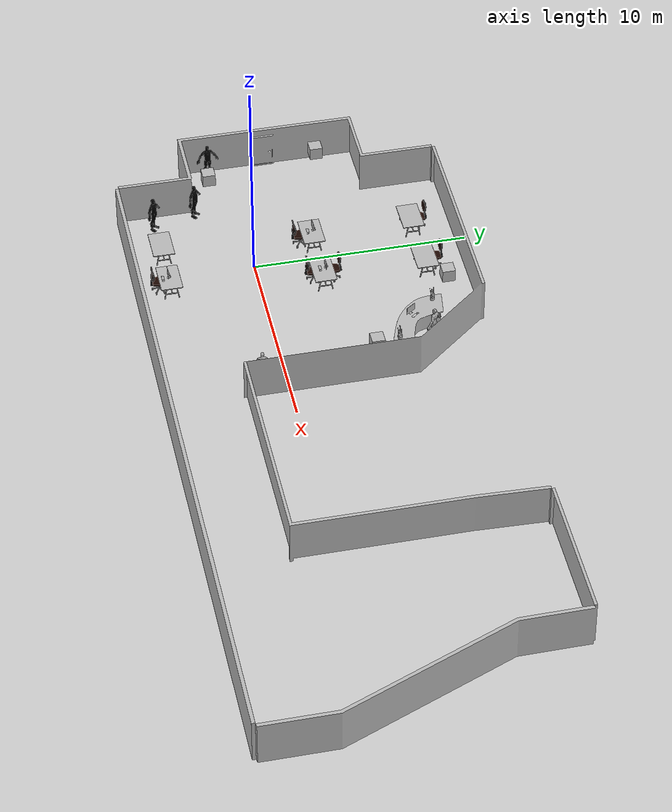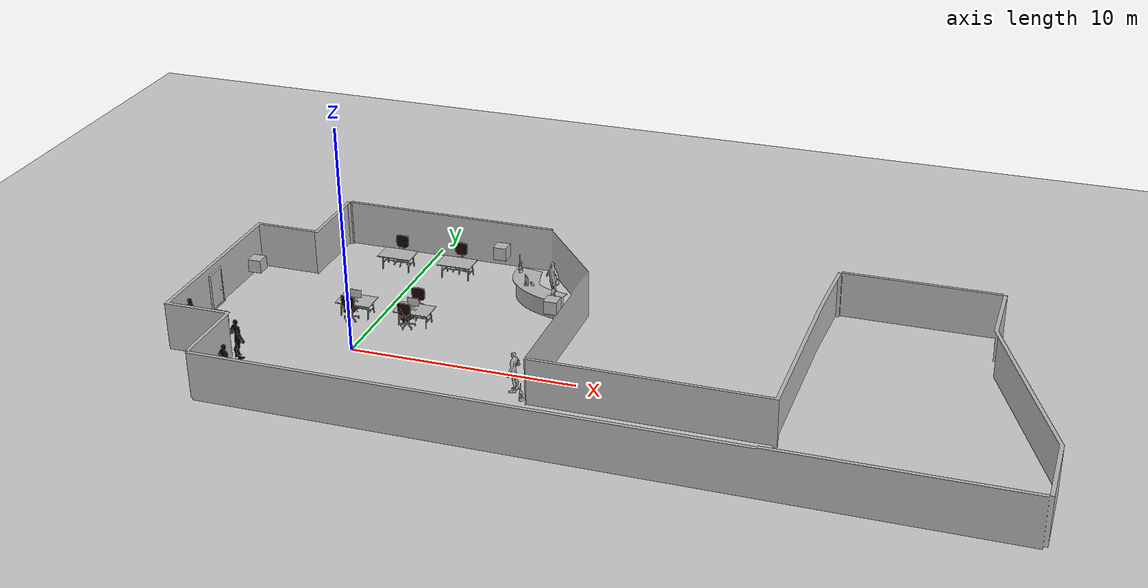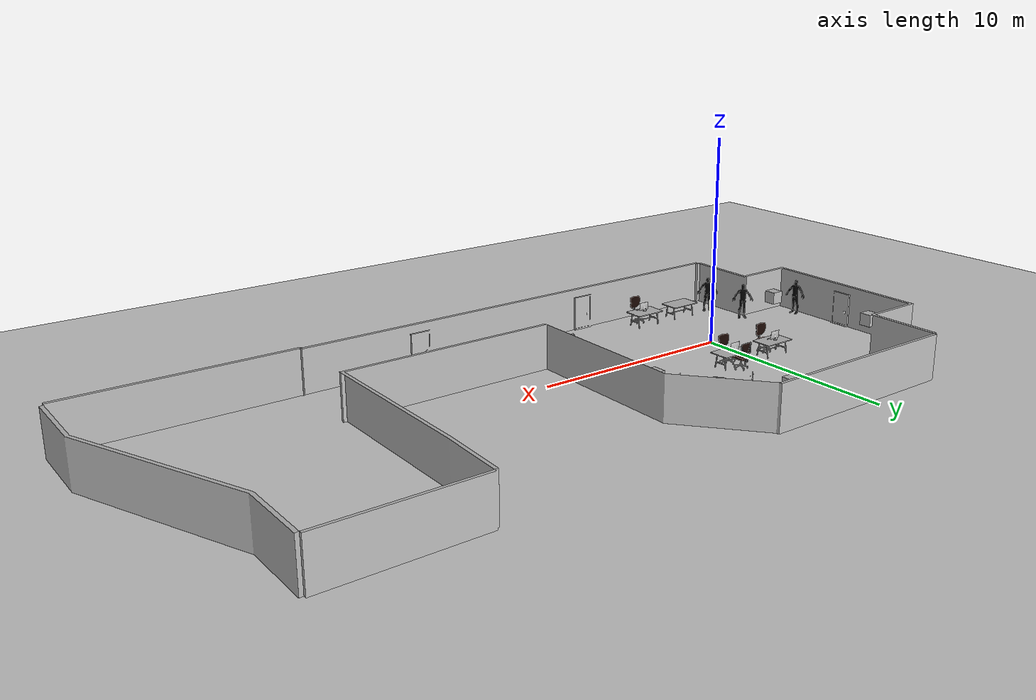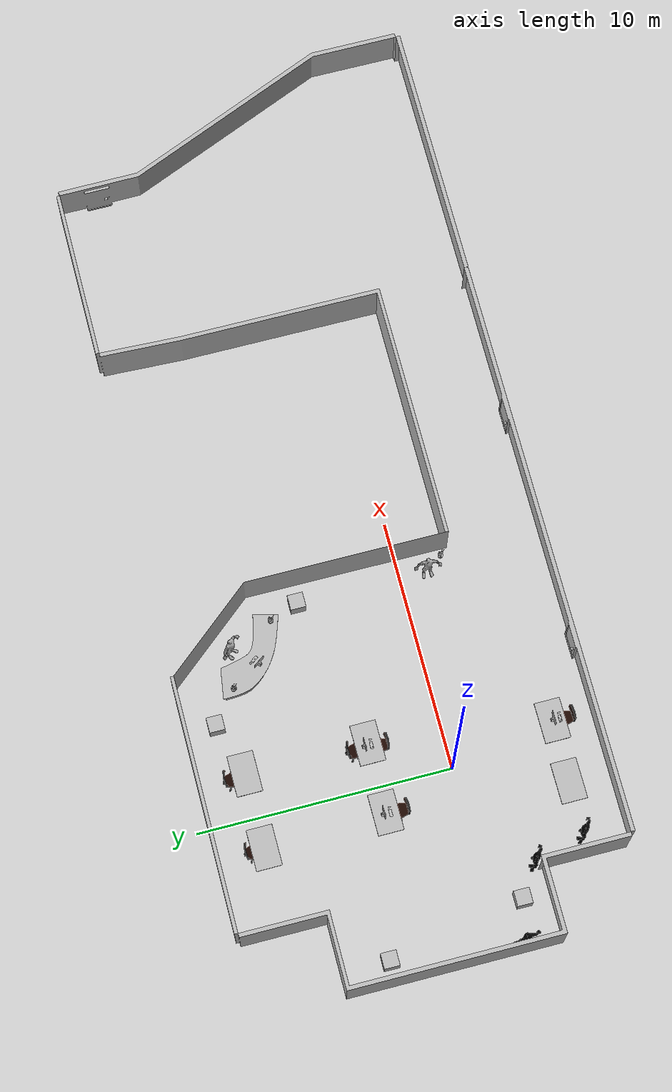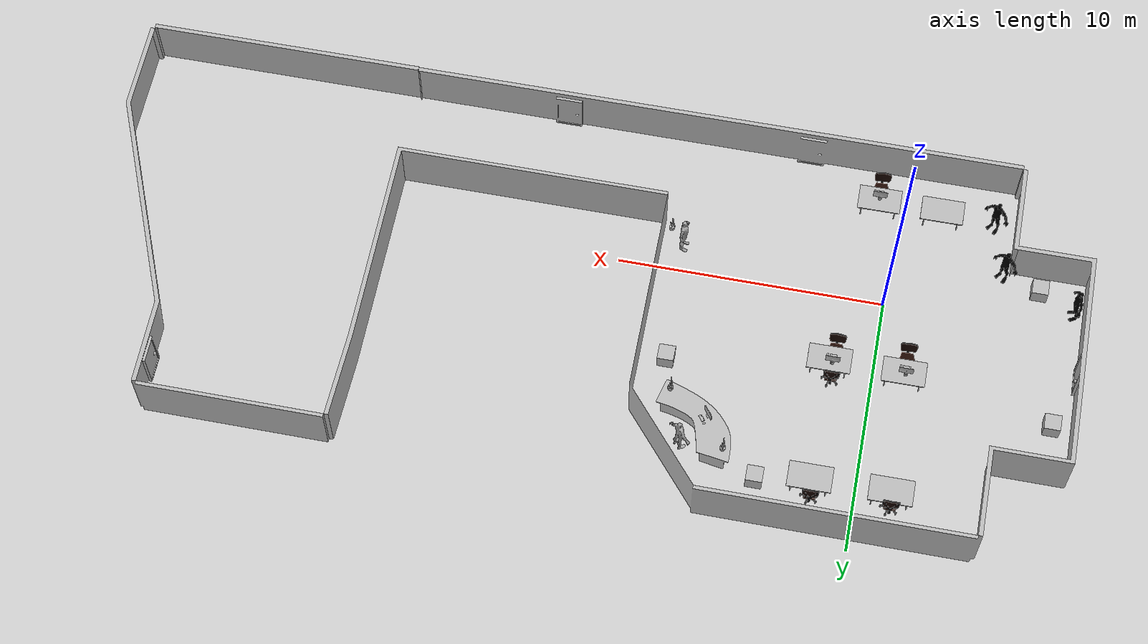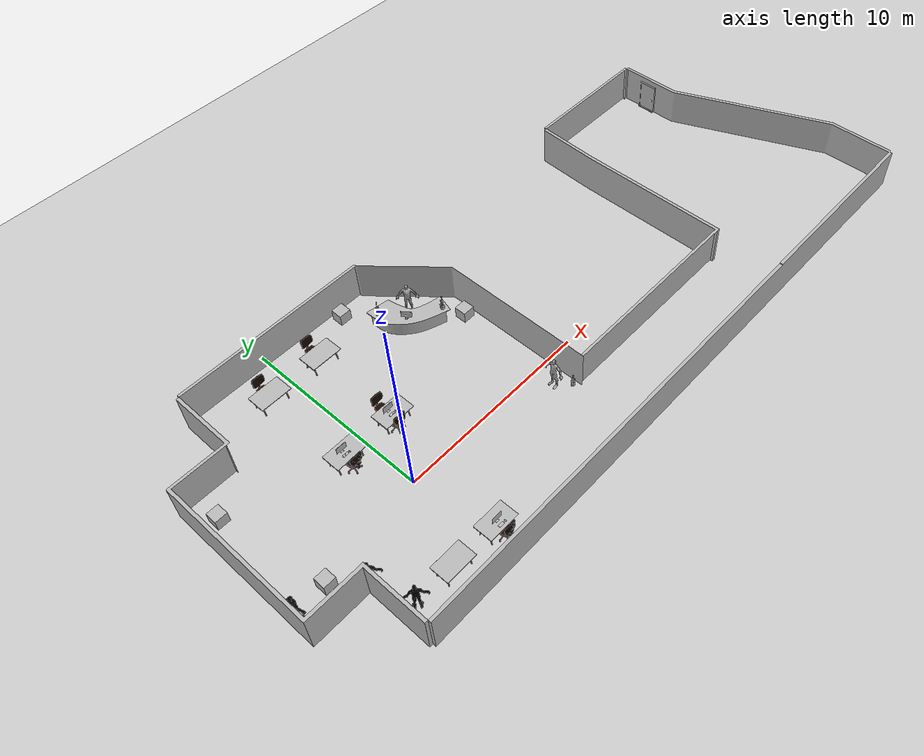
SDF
<sdf version="1.6">
 <world name="default">
  <light name="sun" type="directional">
   <pose>0 0 10 0 -0 0</pose>
   <diffuse>0.8 0.8 0.8 1</diffuse>
   <specular>0.6 0.6 0.6 1</specular>
   <attenuation>
    <range>1000</range>
    <constant>0.9</constant>
    <linear>0.01</linear>
    <quadratic>0.001</quadratic>
   </attenuation>
   <direction>-0.5 0.1 -0.9</direction>
  </light>
  <model name="man">
   <static>1</static>
   <link name="link">
    <collision name="collision">
     <geometry><mesh><scale>1 1 1</scale><uri>model://man/meshes/man.dae</uri></mesh></geometry>
    </collision>
    <visual name="visual">
     <geometry><mesh><scale>1 1 1</scale><uri>model://man/meshes/man.dae</uri></mesh></geometry>
    </visual>
   </link>
   <pose>6.51007 7.02087 0 0 0 -0.756459</pose>
  </model>
  <model name="office">
   <static>1</static>
   <link name="link">
    <collision name="collision">
     <geometry><mesh><scale>1 1 1</scale><uri>model://office/meshes/office.dae</uri></mesh></geometry>
    </collision>
    <visual name="visual">
     <geometry><mesh><scale>1 1 1</scale><uri>model://office/meshes/office.dae</uri></mesh></geometry>
    </visual>
   </link>
   <pose>13.0411 0.272672 0 0 -0 0</pose>
  </model>
  <gravity>0 0 -9.8</gravity>
  <magnetic_field>6e-06 2.3e-05 -4.2e-05</magnetic_field>
  <atmosphere type="adiabatic"/>
  <physics name="default_physics" default="0" type="ode">
   <max_step_size>0.001</max_step_size>
   <real_time_factor>1</real_time_factor>
   <real_time_update_rate>1000</real_time_update_rate>
  </physics>
  <scene><ambient>0.4 0.4 0.4 1</ambient><background>0.7 0.7 0.7 1</background><shadows>0</shadows></scene>
  <audio><device>default</device></audio>
  <spherical_coordinates>
   <surface_model>EARTH_WGS84</surface_model>
   <latitude_deg>0</latitude_deg>
   <longitude_deg>0</longitude_deg>
   <elevation>0</elevation>
   <heading_deg>0</heading_deg>
  </spherical_coordinates>
  <model name="man_red_0">
   <link name="link">
    <inertial>
     <mass>1</mass>
     <inertia><ixx>1</ixx><ixy>0</ixy><ixz>0</ixz><iyy>1</iyy><iyz>0</iyz><izz>1</izz></inertia>
    </inertial>
    <visual name="visual">
     <geometry><mesh><scale>1 1 1</scale><uri>model://man/meshes/man.dae</uri></mesh></geometry>
     <material>
      <shader type="vertex"><normal_map>__default__</normal_map></shader>
      <script><name>ModelPreview_1::link::visual_MATERIAL_</name><uri>__default__</uri></script>
      <ambient>1 0 0 1</ambient>
      <diffuse>0 0 0 1</diffuse>
      <specular>0 0 0 1</specular>
      <emissive>0 0 0 1</emissive>
     </material>
    </visual>
    <collision name="collision">
     <geometry><mesh><uri>model://man/meshes/man.dae</uri><scale>1 1 1</scale></mesh></geometry>
     <surface>
      <friction>
       <ode><mu>1</mu><mu2>1</mu2><fdir1>0 0 0</fdir1><slip1>0</slip1><slip2>0</slip2></ode>
       <torsional>
        <coefficient>1</coefficient>
        <patch_radius>0</patch_radius>
        <surface_radius>0</surface_radius>
        <use_patch_radius>1</use_patch_radius>
        <ode><slip>0</slip></ode>
       </torsional>
      </friction>
      <bounce><restitution_coefficient>0</restitution_coefficient><threshold>1e+06</threshold></bounce>
      <contact>
       <collide_without_contact>0</collide_without_contact>
       <collide_without_contact_bitmask>1</collide_without_contact_bitmask>
       <collide_bitmask>1</collide_bitmask>
       <ode>
        <soft_cfm>0</soft_cfm>
        <soft_erp>0.2</soft_erp>
        <kp>1e+13</kp>
        <kd>1</kd>
        <max_vel>0.01</max_vel>
        <min_depth>0</min_depth>
       </ode>
       <bullet>
        <split_impulse>1</split_impulse>
        <split_impulse_penetration_threshold>-0.01</split_impulse_penetration_threshold>
        <soft_cfm>0</soft_cfm>
        <soft_erp>0.2</soft_erp>
        <kp>1e+13</kp>
        <kd>1</kd>
       </bullet>
      </contact>
     </surface>
    </collision>
   </link>
   <static>1</static>
   <pose>-3.66896 -4.05307 0 0 -0 2.54515</pose>
  </model>
  <model name="man_red_0_clone">
   <link name="link">
    <inertial>
     <mass>1</mass>
     <inertia><ixx>1</ixx><ixy>0</ixy><ixz>0</ixz><iyy>1</iyy><iyz>0</iyz><izz>1</izz></inertia>
    </inertial>
    <visual name="visual">
     <geometry><mesh><scale>1 1 1</scale><uri>model://man/meshes/man.dae</uri></mesh></geometry>
     <material>
      <shader type="vertex"><normal_map>__default__</normal_map></shader>
      <script><name>ModelPreview_1::link::visual_MATERIAL_</name><uri>__default__</uri></script>
      <ambient>1 0 0 1</ambient>
      <diffuse>0 0 0 1</diffuse>
      <specular>0 0 0 1</specular>
      <emissive>0 0 0 1</emissive>
     </material>
    </visual>
    <collision name="collision">
     <geometry><mesh><uri>model://man/meshes/man.dae</uri><scale>1 1 1</scale></mesh></geometry>
     <surface>
      <friction>
       <ode><mu>1</mu><mu2>1</mu2><fdir1>0 0 0</fdir1><slip1>0</slip1><slip2>0</slip2></ode>
       <torsional>
        <coefficient>1</coefficient>
        <patch_radius>0</patch_radius>
        <surface_radius>0</surface_radius>
        <use_patch_radius>1</use_patch_radius>
        <ode><slip>0</slip></ode>
       </torsional>
      </friction>
      <bounce><restitution_coefficient>0</restitution_coefficient><threshold>1e+06</threshold></bounce>
      <contact>
       <collide_without_contact>0</collide_without_contact>
       <collide_without_contact_bitmask>1</collide_without_contact_bitmask>
       <collide_bitmask>1</collide_bitmask>
       <ode>
        <soft_cfm>0</soft_cfm>
        <soft_erp>0.2</soft_erp>
        <kp>1e+13</kp>
        <kd>1</kd>
        <max_vel>0.01</max_vel>
        <min_depth>0</min_depth>
       </ode>
       <bullet>
        <split_impulse>1</split_impulse>
        <split_impulse_penetration_threshold>-0.01</split_impulse_penetration_threshold>
        <soft_cfm>0</soft_cfm>
        <soft_erp>0.2</soft_erp>
        <kp>1e+13</kp>
        <kd>1</kd>
       </bullet>
      </contact>
     </surface>
    </collision>
   </link>
   <static>1</static>
   <pose>-6.99892 -0.899708 0 0 -0 1.76047</pose>
  </model>
  <model name="man_red_0_clone_0">
   <link name="link">
    <inertial>
     <mass>1</mass>
     <inertia><ixx>1</ixx><ixy>0</ixy><ixz>0</ixz><iyy>1</iyy><iyz>0</iyz><izz>1</izz></inertia>
    </inertial>
    <visual name="visual">
     <geometry><mesh><scale>1 1 1</scale><uri>model://man/meshes/man.dae</uri></mesh></geometry>
     <material>
      <shader type="vertex"><normal_map>__default__</normal_map></shader>
      <script><name>ModelPreview_1::link::visual_MATERIAL_</name><uri>__default__</uri></script>
      <ambient>1 0 0 1</ambient>
      <diffuse>0 0 0 1</diffuse>
      <specular>0 0 0 1</specular>
      <emissive>0 0 0 1</emissive>
     </material>
    </visual>
    <collision name="collision">
     <geometry><mesh><uri>model://man/meshes/man.dae</uri><scale>1 1 1</scale></mesh></geometry>
     <surface>
      <friction>
       <ode><mu>1</mu><mu2>1</mu2><fdir1>0 0 0</fdir1><slip1>0</slip1><slip2>0</slip2></ode>
       <torsional>
        <coefficient>1</coefficient>
        <patch_radius>0</patch_radius>
        <surface_radius>0</surface_radius>
        <use_patch_radius>1</use_patch_radius>
        <ode><slip>0</slip></ode>
       </torsional>
      </friction>
      <bounce><restitution_coefficient>0</restitution_coefficient><threshold>1e+06</threshold></bounce>
      <contact>
       <collide_without_contact>0</collide_without_contact>
       <collide_without_contact_bitmask>1</collide_without_contact_bitmask>
       <collide_bitmask>1</collide_bitmask>
       <ode>
        <soft_cfm>0</soft_cfm>
        <soft_erp>0.2</soft_erp>
        <kp>1e+13</kp>
        <kd>1</kd>
        <max_vel>0.01</max_vel>
        <min_depth>0</min_depth>
       </ode>
       <bullet>
        <split_impulse>1</split_impulse>
        <split_impulse_penetration_threshold>-0.01</split_impulse_penetration_threshold>
        <soft_cfm>0</soft_cfm>
        <soft_erp>0.2</soft_erp>
        <kp>1e+13</kp>
        <kd>1</kd>
       </bullet>
      </contact>
     </surface>
    </collision>
   </link>
   <static>1</static>
   <pose>-4.22466 -2.02378 0 0 -0 2.54515</pose>
  </model>
  <model name="officeDeskCurved">
   <static>1</static>
   <link name="link">
    <collision name="collision">
     <geometry>
      <mesh><scale>1 1 1</scale><uri>model://officeDeskCurved/meshes/officeDeskCurved.dae</uri></mesh>
     </geometry>
    </collision>
    <visual name="visual">
     <geometry>
      <mesh><scale>1 1 1</scale><uri>model://officeDeskCurved/meshes/officeDeskCurved.dae</uri></mesh>
     </geometry>
    </visual>
   </link>
   <pose>6.07763 6.48837 0 0 -0 2.78981</pose>
  </model>
  <model name="ground_plane">
   <static>1</static>
   <link name="link">
    <collision name="collision">
     <geometry><plane><normal>0 0 1</normal><size>100 100</size></plane></geometry>
     <surface>
      <contact><collide_bitmask>65535</collide_bitmask></contact>
      <friction><ode><mu>100</mu><mu2>50</mu2></ode></friction>
     </surface>
    </collision>
    <visual name="visual">
     <cast_shadows>0</cast_shadows>
     <geometry><plane><normal>0 0 1</normal><size>100 100</size></plane></geometry>
     <material>
      <script><uri>file://media/materials/scripts/gazebo.material</uri><name>Gazebo/Grey</name></script>
     </material>
    </visual>
   </link>
   <pose>0.549 0.213442 0 0 -0 0</pose>
  </model>
  <model name="officeChair">
   <static>1</static>
   <link name="link">
    <collision name="collision">
     <geometry><mesh><scale>1 1 1</scale><uri>model://officeChair/meshes/officeChair.dae</uri></mesh></geometry>
    </collision>
    <visual name="visual">
     <geometry><mesh><scale>1 1 1</scale><uri>model://officeChair/meshes/officeChair.dae</uri></mesh></geometry>
    </visual>
   </link>
   <pose>1.56967 8.1752 0 0 0 -1.57314</pose>
  </model>
  <model name="Table">
   <static>1</static>
   <link name="link">
    <collision name="collision">
     <geometry><mesh><scale>1 1 1</scale><uri>model://Table/meshes/Table.dae</uri></mesh></geometry>
    </collision>
    <visual name="visual">
     <geometry><mesh><scale>1 1 1</scale><uri>model://Table/meshes/Table.dae</uri></mesh></geometry>
    </visual>
   </link>
   <pose>1.68451 7.68728 0 0 0 -1.56567</pose>
  </model>
  <model name="Table_clone">
   <static>1</static>
   <link name="link">
    <collision name="collision">
     <geometry><mesh><scale>1 1 1</scale><uri>model://Table/meshes/Table.dae</uri></mesh></geometry>
    </collision>
    <visual name="visual">
     <geometry><mesh><scale>1 1 1</scale><uri>model://Table/meshes/Table.dae</uri></mesh></geometry>
    </visual>
   </link>
   <pose>-1.23195 7.66891 0 0 0 -1.56567</pose>
  </model>
  <model name="officeChair_clone">
   <static>1</static>
   <link name="link">
    <collision name="collision">
     <geometry><mesh><scale>1 1 1</scale><uri>model://officeChair/meshes/officeChair.dae</uri></mesh></geometry>
    </collision>
    <visual name="visual">
     <geometry><mesh><scale>1 1 1</scale><uri>model://officeChair/meshes/officeChair.dae</uri></mesh></geometry>
    </visual>
   </link>
   <pose>-1.29171 8.06471 0 0 0 -1.57314</pose>
  </model>
  <model name="Table_clone_0">
   <static>1</static>
   <link name="link">
    <collision name="collision">
     <geometry><mesh><scale>1 1 1</scale><uri>model://Table/meshes/Table.dae</uri></mesh></geometry>
    </collision>
    <visual name="visual">
     <geometry><mesh><scale>1 1 1</scale><uri>model://Table/meshes/Table.dae</uri></mesh></geometry>
    </visual>
   </link>
   <pose>1.66509 2.90165 0 0 0 -1.56567</pose>
  </model>
  <model name="officeChair_0">
   <static>1</static>
   <link name="link">
    <collision name="collision">
     <geometry><mesh><scale>1 1 1</scale><uri>model://officeChair/meshes/officeChair.dae</uri></mesh></geometry>
    </collision>
    <visual name="visual">
     <geometry><mesh><scale>1 1 1</scale><uri>model://officeChair/meshes/officeChair.dae</uri></mesh></geometry>
    </visual>
   </link>
   <pose>1.46758 2.51327 0 0 -0 1.55438</pose>
  </model>
  <model name="officeChair_clone_0">
   <static>1</static>
   <link name="link">
    <collision name="collision">
     <geometry><mesh><scale>1 1 1</scale><uri>model://officeChair/meshes/officeChair.dae</uri></mesh></geometry>
    </collision>
    <visual name="visual">
     <geometry><mesh><scale>1 1 1</scale><uri>model://officeChair/meshes/officeChair.dae</uri></mesh></geometry>
    </visual>
   </link>
   <pose>1.49206 3.41819 0 0 0 -1.57314</pose>
  </model>
  <model name="Table_clone_clone">
   <static>1</static>
   <link name="link">
    <collision name="collision">
     <geometry><mesh><scale>1 1 1</scale><uri>model://Table/meshes/Table.dae</uri></mesh></geometry>
    </collision>
    <visual name="visual">
     <geometry><mesh><scale>1 1 1</scale><uri>model://Table/meshes/Table.dae</uri></mesh></geometry>
    </visual>
   </link>
   <pose>-1.07988 2.9276 0 0 0 -1.56567</pose>
  </model>
  <model name="officeChair_clone_0_clone">
   <static>1</static>
   <link name="link">
    <collision name="collision">
     <geometry><mesh><scale>1 1 1</scale><uri>model://officeChair/meshes/officeChair.dae</uri></mesh></geometry>
    </collision>
    <visual name="visual">
     <geometry><mesh><scale>1 1 1</scale><uri>model://officeChair/meshes/officeChair.dae</uri></mesh></geometry>
    </visual>
   </link>
   <pose>-1.14277 2.40658 0 0 -0 1.59825</pose>
  </model>
  <model name="Plant">
   <static>1</static>
   <link name="link">
    <collision name="collision">
     <geometry><mesh><scale>1 1 1</scale><uri>model://Plant/meshes/Plant.dae</uri></mesh></geometry>
    </collision>
    <visual name="visual">
     <geometry><mesh><scale>1 1 1</scale><uri>model://Plant/meshes/Plant.dae</uri></mesh></geometry>
    </visual>
   </link>
   <pose>4.88146 7.31311 0.900776 0 -0 0</pose>
  </model>
  <model name="Plant_clone">
   <static>1</static>
   <link name="link">
    <collision name="collision">
     <geometry><mesh><scale>1 1 1</scale><uri>model://Plant/meshes/Plant.dae</uri></mesh></geometry>
    </collision>
    <visual name="visual">
     <geometry><mesh><scale>1 1 1</scale><uri>model://Plant/meshes/Plant.dae</uri></mesh></geometry>
    </visual>
   </link>
   <pose>7.12153 5.30998 0.900776 0 -0 0</pose>
  </model>
  <model name="marker800">
   <static>1</static>
   <link name="link">
    <collision name="collision">
     <geometry><mesh><scale>0.3 0.3 0.3</scale><uri>model://marker800/meshes/marker800.dae</uri></mesh></geometry>
    </collision>
    <visual name="visual">
     <geometry><mesh><scale>0.3 0.3 0.3</scale><uri>model://marker800/meshes/marker800.dae</uri></mesh></geometry>
    </visual>
   </link>
   <pose>7.50103 4.18458 0.899858 0 -0 0</pose>
  </model>
  <model name="marker232">
   <static>1</static>
   <link name="link">
    <collision name="collision">
     <geometry><mesh><scale>0.3 0.3 0.3</scale><uri>model://marker232/meshes/marker232.dae</uri></mesh></geometry>
    </collision>
    <visual name="visual">
     <geometry><mesh><scale>0.3 0.3 0.3</scale><uri>model://marker232/meshes/marker232.dae</uri></mesh></geometry>
    </visual>
   </link>
   <pose>3.61631 8.31978 0.945165 0 -0 0</pose>
  </model>
  <model name="marker800_0">
   <static>1</static>
   <link name="link">
    <collision name="collision">
     <geometry><mesh><scale>0.3 0.3 0.3</scale><uri>model://marker800/meshes/marker800.dae</uri></mesh></geometry>
    </collision>
    <visual name="visual">
     <geometry><mesh><scale>0.3 0.3 0.3</scale><uri>model://marker800/meshes/marker800.dae</uri></mesh></geometry>
    </visual>
   </link>
   <pose>-6.55157 4.23254 0.72596 0 -0 0</pose>
  </model>
  <model name="Plant_0">
   <static>1</static>
   <link name="link">
    <collision name="collision">
     <geometry><mesh><scale>1 1 1</scale><uri>model://Plant/meshes/Plant.dae</uri></mesh></geometry>
    </collision>
    <visual name="visual">
     <geometry><mesh><scale>1 1 1</scale><uri>model://Plant/meshes/Plant.dae</uri></mesh></geometry>
    </visual>
   </link>
   <pose>8.25908 -1.75595 0 0 -0 0</pose>
  </model>
  <model name="Table_clone_0_clone">
   <static>1</static>
   <link name="link">
    <collision name="collision">
     <geometry><mesh><scale>1 1 1</scale><uri>model://Table/meshes/Table.dae</uri></mesh></geometry>
    </collision>
    <visual name="visual">
     <geometry><mesh><scale>1 1 1</scale><uri>model://Table/meshes/Table.dae</uri></mesh></geometry>
    </visual>
   </link>
   <pose>0.750312 -4.09512 0 0 0 -1.56567</pose>
  </model>
  <model name="Table_clone_clone_clone">
   <static>1</static>
   <link name="link">
    <collision name="collision">
     <geometry><mesh><scale>1 1 1</scale><uri>model://Table/meshes/Table.dae</uri></mesh></geometry>
    </collision>
    <visual name="visual">
     <geometry><mesh><scale>1 1 1</scale><uri>model://Table/meshes/Table.dae</uri></mesh></geometry>
    </visual>
   </link>
   <pose>-1.64324 -4.05776 0 0 0 -1.56567</pose>
  </model>
  <model name="officeChair_clone_0_clone_clone">
   <static>1</static>
   <link name="link">
    <collision name="collision">
     <geometry><mesh><scale>1 1 1</scale><uri>model://officeChair/meshes/officeChair.dae</uri></mesh></geometry>
    </collision>
    <visual name="visual">
     <geometry><mesh><scale>1 1 1</scale><uri>model://officeChair/meshes/officeChair.dae</uri></mesh></geometry>
    </visual>
   </link>
   <pose>0.731345 -4.56231 0 0 -0 1.59825</pose>
  </model>
  <model name="marker800_0_clone">
   <static>1</static>
   <link name="link">
    <collision name="collision">
     <geometry><mesh><scale>0.3 0.3 0.3</scale><uri>model://marker800/meshes/marker800.dae</uri></mesh></geometry>
    </collision>
    <visual name="visual">
     <geometry><mesh><scale>0.3 0.3 0.3</scale><uri>model://marker800/meshes/marker800.dae</uri></mesh></geometry>
    </visual>
   </link>
   <pose>-5.56338 -1.11947 0.772058 0 -0 0</pose>
  </model>
  <model name="Computer">
   <static>1</static>
   <link name="link">
    <collision name="collision">
     <geometry><mesh><scale>1 1 1</scale><uri>model://Computer/meshes/Computer.dae</uri></mesh></geometry>
    </collision>
    <visual name="visual">
     <geometry><mesh><scale>1 1 1</scale><uri>model://Computer/meshes/Computer.dae</uri></mesh></geometry>
    </visual>
   </link>
   <pose>1.55718 2.94329 0.716811 0 -0 0</pose>
  </model>
  <model name="Computer_clone">
   <static>1</static>
   <link name="link">
    <collision name="collision">
     <geometry><mesh><scale>1 1 1</scale><uri>model://Computer/meshes/Computer.dae</uri></mesh></geometry>
    </collision>
    <visual name="visual">
     <geometry><mesh><scale>1 1 1</scale><uri>model://Computer/meshes/Computer.dae</uri></mesh></geometry>
    </visual>
   </link>
   <pose>-1.13505 2.90977 0.716811 0 -0 0</pose>
  </model>
  <model name="Computer_clone_0">
   <static>1</static>
   <link name="link">
    <collision name="collision">
     <geometry><mesh><scale>1 1 1</scale><uri>model://Computer/meshes/Computer.dae</uri></mesh></geometry>
    </collision>
    <visual name="visual">
     <geometry><mesh><scale>1 1 1</scale><uri>model://Computer/meshes/Computer.dae</uri></mesh></geometry>
    </visual>
   </link>
   <pose>5.69544 6.21873 0.894724 0 -0 2.19948</pose>
  </model>
  <model name="Computer_clone_1">
   <static>1</static>
   <link name="link">
    <collision name="collision">
     <geometry><mesh><scale>1 1 1</scale><uri>model://Computer/meshes/Computer.dae</uri></mesh></geometry>
    </collision>
    <visual name="visual">
     <geometry><mesh><scale>1 1 1</scale><uri>model://Computer/meshes/Computer.dae</uri></mesh></geometry>
    </visual>
   </link>
   <pose>0.766198 -4.2411 0.716811 0 -0 0</pose>
  </model>
  <model name="man_0">
   <static>1</static>
   <link name="link">
    <collision name="collision">
     <geometry><mesh><scale>1 1 1</scale><uri>model://man/meshes/man.dae</uri></mesh></geometry>
    </collision>
    <visual name="visual">
     <geometry><mesh><scale>1 1 1</scale><uri>model://man/meshes/man.dae</uri></mesh></geometry>
    </visual>
   </link>
   <pose>7.72092 -1.08787 0 0 0 -1.63458</pose>
  </model>
 </world>
</sdf>
